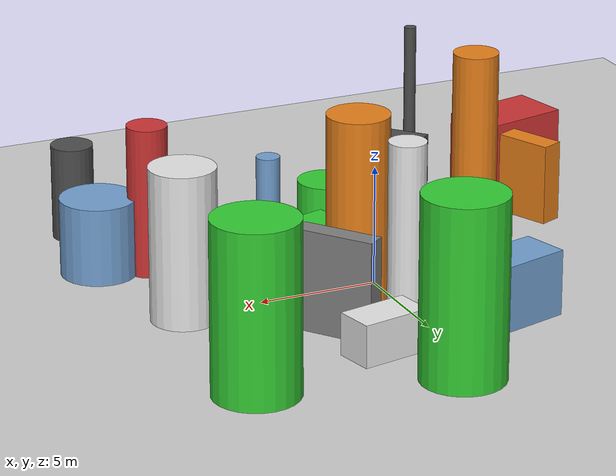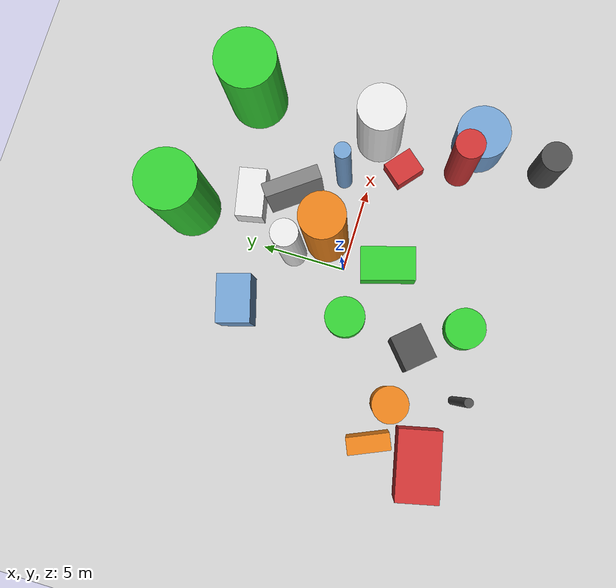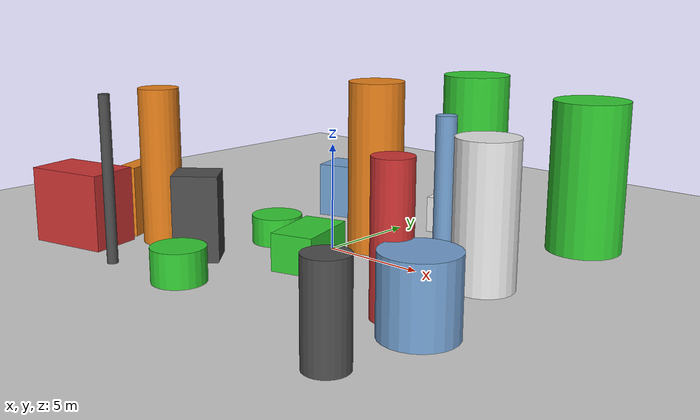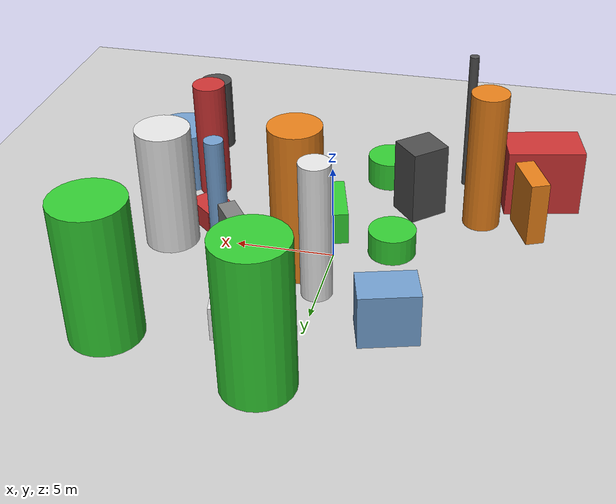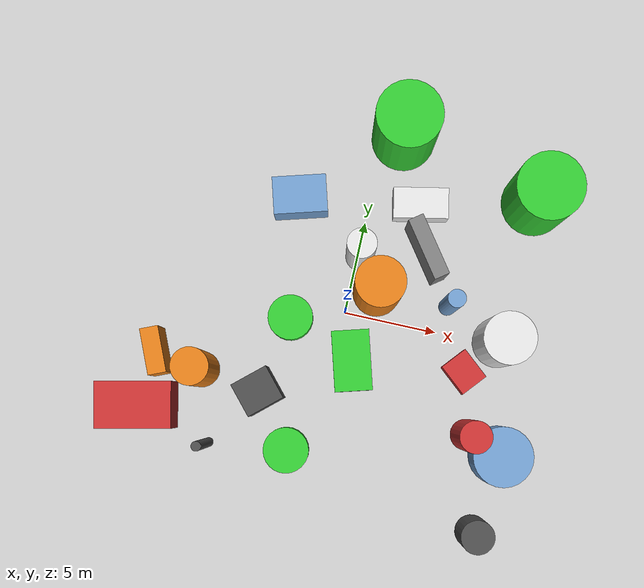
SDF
<?xml version='1.0'?>
<sdf version='1.6'>
  <world name='default'>
    <!-- Sun light -->
    <light name='sun' type='directional'>
      <cast_shadows>1</cast_shadows>
      <pose>0 0 10 0 0 0</pose>
      <diffuse>0.8 0.8 0.8 1</diffuse>
      <specular>0.2 0.2 0.2 1</specular>
      <attenuation>
        <range>1000</range>
        <constant>0.9</constant>
        <linear>0.01</linear>
        <quadratic>0.001</quadratic>
      </attenuation>
      <direction>-0.5 0.1 -0.9</direction>
    </light>

    <!-- Ground plane -->
    <model name='ground_plane'>
      <static>1</static>
      <link name='link'>
        <collision name='collision'>
          <geometry>
            <plane>
              <normal>0 0 1</normal>
              <size>100 100</size>
            </plane>
          </geometry>
          <surface>
            <contact>
              <collide_bitmask>65535</collide_bitmask>
              <ode/>
            </contact>
            <friction>
              <ode>
                <mu>100</mu>
                <mu2>50</mu2>
              </ode>
              <torsional><ode/></torsional>
            </friction>
            <bounce/>
          </surface>
          <max_contacts>10</max_contacts>
        </collision>
        <visual name='visual'>
          <cast_shadows>0</cast_shadows>
          <geometry>
            <plane>
              <normal>0 0 1</normal>
              <size>100 100</size>
            </plane>
          </geometry>
          <material>
            <script>
              <uri>file://media/materials/scripts/gazebo.material</uri>
              <n>Gazebo/Grey</n>
            </script>
          </material>
        </visual>
      </link>
    </model>

    <!-- Environment -->
    <magnetic_field>6e-06 2.3e-05 -4.2e-05</magnetic_field>
    <atmosphere type='adiabatic'/>
    <physics name='default_physics' default='0' type='ode'>
      <gravity>0 0 -9.8</gravity>
      <max_step_size>0.004</max_step_size>
      <real_time_factor>1</real_time_factor>
      <real_time_update_rate>250</real_time_update_rate>
    </physics>
    <scene>
      <ambient>0.4 0.4 0.4 1</ambient>
      <background>0.7 0.7 0.7 1</background>
      <shadows>1</shadows>
    </scene>
    <wind/>
    <spherical_coordinates>
      <surface_model>EARTH_WGS84</surface_model>
      <latitude_deg>0</latitude_deg>
      <longitude_deg>0</longitude_deg>
      <elevation>0</elevation>
      <heading_deg>0</heading_deg>
    </spherical_coordinates>

    <!-- ============ OBSTACLES (21) ============ -->
    <model name='obs_00'>
      <static>1</static>
      <link name='link'>
        <visual name='visual'>
          <geometry>
            <cylinder>
              <radius>0.4699</radius>
              <length>6.7799</length>
            </cylinder>
          </geometry>
          <material>
            <script>
              <n>Gazebo/Blue</n>
              <uri>file://media/materials/scripts/gazebo.material</uri>
            </script>
            <ambient>0.447 0.624 0.812 1</ambient>
          </material>
        </visual>
        <collision name='collision'>
          <geometry>
            <cylinder>
              <radius>0.4699</radius>
              <length>6.7799</length>
            </cylinder>
          </geometry>
          <max_contacts>10</max_contacts>
          <surface>
            <contact><ode/></contact>
            <bounce/>
            <friction>
              <ode><mu>1</mu><mu2>1</mu2></ode>
              <torsional><ode/></torsional>
            </friction>
          </surface>
        </collision>
      </link>
      <pose>5.3257 1.5313 3.3900 0 0 2.4910</pose>
    </model>

    <model name='obs_01'>
      <static>1</static>
      <link name='link'>
        <visual name='visual'>
          <geometry>
            <box>
              <size>3.3683 0.8338 4.2113</size>
            </box>
          </geometry>
          <material>
            <script>
              <n>Gazebo/Grey</n>
              <uri>file://media/materials/scripts/gazebo.material</uri>
            </script>
            <ambient>0.5 0.5 0.5 1</ambient>
          </material>
        </visual>
        <collision name='collision'>
          <geometry>
            <box>
              <size>3.3683 0.8338 4.2113</size>
            </box>
          </geometry>
          <max_contacts>10</max_contacts>
          <surface>
            <contact><ode/></contact>
            <bounce/>
            <friction>
              <ode><mu>1</mu><mu2>1</mu2></ode>
              <torsional><ode/></torsional>
            </friction>
          </surface>
        </collision>
      </link>
      <pose>3.4899 4.0510 2.1056 0 0 2.2081</pose>
    </model>

    <model name='obs_02'>
      <static>1</static>
      <link name='link'>
        <visual name='visual'>
          <geometry>
            <cylinder>
              <radius>1.2161</radius>
              <length>1.5493</length>
            </cylinder>
          </geometry>
          <material>
            <script>
              <n>Gazebo/Green</n>
              <uri>file://media/materials/scripts/gazebo.material</uri>
            </script>
            <ambient>0.2 0.8 0.2 1</ambient>
          </material>
        </visual>
        <collision name='collision'>
          <geometry>
            <cylinder>
              <radius>1.2161</radius>
              <length>1.5493</length>
            </cylinder>
          </geometry>
          <max_contacts>10</max_contacts>
          <surface>
            <contact><ode/></contact>
            <bounce/>
            <friction>
              <ode><mu>1</mu><mu2>1</mu2></ode>
              <torsional><ode/></torsional>
            </friction>
          </surface>
        </collision>
      </link>
      <pose>-1.4585 -7.9180 0.7747 0 0 2.2958</pose>
    </model>

    <model name='obs_03'>
      <static>1</static>
      <link name='link'>
        <visual name='visual'>
          <geometry>
            <cylinder>
              <radius>0.7686</radius>
              <length>7.1585</length>
            </cylinder>
          </geometry>
          <material>
            <script>
              <n>Gazebo/White</n>
              <uri>file://media/materials/scripts/gazebo.material</uri>
            </script>
            <ambient>0.9 0.9 0.9 1</ambient>
          </material>
        </visual>
        <collision name='collision'>
          <geometry>
            <cylinder>
              <radius>0.7686</radius>
              <length>7.1585</length>
            </cylinder>
          </geometry>
          <max_contacts>10</max_contacts>
          <surface>
            <contact><ode/></contact>
            <bounce/>
            <friction>
              <ode><mu>1</mu><mu2>1</mu2></ode>
              <torsional><ode/></torsional>
            </friction>
          </surface>
        </collision>
      </link>
      <pose>0.0939 3.1506 3.5793 0 0 2.8961</pose>
    </model>

    <model name='obs_04'>
      <static>1</static>
      <link name='link'>
        <visual name='visual'>
          <geometry>
            <cylinder>
              <radius>1.7555</radius>
              <length>7.0885</length>
            </cylinder>
          </geometry>
          <material>
            <script>
              <n>Gazebo/Green</n>
              <uri>file://media/materials/scripts/gazebo.material</uri>
            </script>
            <ambient>0.2 0.8 0.2 1</ambient>
          </material>
        </visual>
        <collision name='collision'>
          <geometry>
            <cylinder>
              <radius>1.7555</radius>
              <length>7.0885</length>
            </cylinder>
          </geometry>
          <max_contacts>10</max_contacts>
          <surface>
            <contact><ode/></contact>
            <bounce/>
            <friction>
              <ode><mu>1</mu><mu2>1</mu2></ode>
              <torsional><ode/></torsional>
            </friction>
          </surface>
        </collision>
      </link>
      <pose>8.6704 8.0497 3.5443 0 0 1.3085</pose>
    </model>

    <model name='obs_05'>
      <static>1</static>
      <link name='link'>
        <visual name='visual'>
          <geometry>
            <cylinder>
              <radius>1.7215</radius>
              <length>7.5006</length>
            </cylinder>
          </geometry>
          <material>
            <script>
              <n>Gazebo/Green</n>
              <uri>file://media/materials/scripts/gazebo.material</uri>
            </script>
            <ambient>0.2 0.8 0.2 1</ambient>
          </material>
        </visual>
        <collision name='collision'>
          <geometry>
            <cylinder>
              <radius>1.7215</radius>
              <length>7.5006</length>
            </cylinder>
          </geometry>
          <max_contacts>10</max_contacts>
          <surface>
            <contact><ode/></contact>
            <bounce/>
            <friction>
              <ode><mu>1</mu><mu2>1</mu2></ode>
              <torsional><ode/></torsional>
            </friction>
          </surface>
        </collision>
      </link>
      <pose>1.0016 9.9370 3.7503 0 0 2.3489</pose>
    </model>

    <model name='obs_06'>
      <static>1</static>
      <link name='link'>
        <visual name='visual'>
          <geometry>
            <box>
              <size>1.8387 1.5667 1.2059</size>
            </box>
          </geometry>
          <material>
            <script>
              <n>Gazebo/Red</n>
              <uri>file://media/materials/scripts/gazebo.material</uri>
            </script>
            <ambient>0.8 0.2 0.2 1</ambient>
          </material>
        </visual>
        <collision name='collision'>
          <geometry>
            <box>
              <size>1.8387 1.5667 1.2059</size>
            </box>
          </geometry>
          <max_contacts>10</max_contacts>
          <surface>
            <contact><ode/></contact>
            <bounce/>
            <friction>
              <ode><mu>1</mu><mu2>1</mu2></ode>
              <torsional><ode/></torsional>
            </friction>
          </surface>
        </collision>
      </link>
      <pose>6.8971 -1.7531 0.6030 0 0 2.4423</pose>
    </model>

    <model name='obs_07'>
      <static>1</static>
      <link name='link'>
        <visual name='visual'>
          <geometry>
            <box>
              <size>1.6439 2.9422 1.7660</size>
            </box>
          </geometry>
          <material>
            <script>
              <n>Gazebo/White</n>
              <uri>file://media/materials/scripts/gazebo.material</uri>
            </script>
            <ambient>0.9 0.9 0.9 1</ambient>
          </material>
        </visual>
        <collision name='collision'>
          <geometry>
            <box>
              <size>1.6439 2.9422 1.7660</size>
            </box>
          </geometry>
          <max_contacts>10</max_contacts>
          <surface>
            <contact><ode/></contact>
            <bounce/>
            <friction>
              <ode><mu>1</mu><mu2>1</mu2></ode>
              <torsional><ode/></torsional>
            </friction>
          </surface>
        </collision>
      </link>
      <pose>2.6648 6.5231 0.8830 0 0 1.7747</pose>
    </model>

    <model name='obs_08'>
      <static>1</static>
      <link name='link'>
        <visual name='visual'>
          <geometry>
            <box>
              <size>1.8751 2.0597 3.9757</size>
            </box>
          </geometry>
          <material>
            <script>
              <n>Gazebo/DarkGrey</n>
              <uri>file://media/materials/scripts/gazebo.material</uri>
            </script>
            <ambient>0.3 0.3 0.3 1</ambient>
          </material>
        </visual>
        <collision name='collision'>
          <geometry>
            <box>
              <size>1.8751 2.0597 3.9757</size>
            </box>
          </geometry>
          <max_contacts>10</max_contacts>
          <surface>
            <contact><ode/></contact>
            <bounce/>
            <friction>
              <ode><mu>1</mu><mu2>1</mu2></ode>
              <torsional><ode/></torsional>
            </friction>
          </surface>
        </collision>
      </link>
      <pose>-3.5310 -5.1855 1.9878 0 0 2.2983</pose>
    </model>

    <model name='obs_09'>
      <static>1</static>
      <link name='link'>
        <visual name='visual'>
          <geometry>
            <box>
              <size>2.0118 3.2523 1.7401</size>
            </box>
          </geometry>
          <material>
            <script>
              <n>Gazebo/Green</n>
              <uri>file://media/materials/scripts/gazebo.material</uri>
            </script>
            <ambient>0.2 0.8 0.2 1</ambient>
          </material>
        </visual>
        <collision name='collision'>
          <geometry>
            <box>
              <size>2.0118 3.2523 1.7401</size>
            </box>
          </geometry>
          <max_contacts>10</max_contacts>
          <surface>
            <contact><ode/></contact>
            <bounce/>
            <friction>
              <ode><mu>1</mu><mu2>1</mu2></ode>
              <torsional><ode/></torsional>
            </friction>
          </surface>
        </collision>
      </link>
      <pose>0.9125 -2.4987 0.8700 0 0 0.2830</pose>
    </model>

    <model name='obs_10'>
      <static>1</static>
      <link name='link'>
        <visual name='visual'>
          <geometry>
            <cylinder>
              <radius>1.2072</radius>
              <length>1.3452</length>
            </cylinder>
          </geometry>
          <material>
            <script>
              <n>Gazebo/Green</n>
              <uri>file://media/materials/scripts/gazebo.material</uri>
            </script>
            <ambient>0.2 0.8 0.2 1</ambient>
          </material>
        </visual>
        <collision name='collision'>
          <geometry>
            <cylinder>
              <radius>1.2072</radius>
              <length>1.3452</length>
            </cylinder>
          </geometry>
          <max_contacts>10</max_contacts>
          <surface>
            <contact><ode/></contact>
            <bounce/>
            <friction>
              <ode><mu>1</mu><mu2>1</mu2></ode>
              <torsional><ode/></torsional>
            </friction>
          </surface>
        </collision>
      </link>
      <pose>-2.7998 -0.9519 0.6726 0 0 0.2593</pose>
    </model>

    <model name='obs_11'>
      <static>1</static>
      <link name='link'>
        <visual name='visual'>
          <geometry>
            <cylinder>
              <radius>0.8873</radius>
              <length>4.0414</length>
            </cylinder>
          </geometry>
          <material>
            <script>
              <n>Gazebo/DarkGrey</n>
              <uri>file://media/materials/scripts/gazebo.material</uri>
            </script>
            <ambient>0.3 0.3 0.3 1</ambient>
          </material>
        </visual>
        <collision name='collision'>
          <geometry>
            <cylinder>
              <radius>0.8873</radius>
              <length>4.0414</length>
            </cylinder>
          </geometry>
          <max_contacts>10</max_contacts>
          <surface>
            <contact><ode/></contact>
            <bounce/>
            <friction>
              <ode><mu>1</mu><mu2>1</mu2></ode>
              <torsional><ode/></torsional>
            </friction>
          </surface>
        </collision>
      </link>
      <pose>9.1965 -9.9961 2.0207 0 0 0.8249</pose>
    </model>

    <model name='obs_12'>
      <static>1</static>
      <link name='link'>
        <visual name='visual'>
          <geometry>
            <box>
              <size>0.9720 2.4575 3.4393</size>
            </box>
          </geometry>
          <material>
            <script>
              <n>Gazebo/Orange</n>
              <uri>file://media/materials/scripts/gazebo.material</uri>
            </script>
            <ambient>0.9 0.5 0.1 1</ambient>
          </material>
        </visual>
        <collision name='collision'>
          <geometry>
            <box>
              <size>0.9720 2.4575 3.4393</size>
            </box>
          </geometry>
          <max_contacts>10</max_contacts>
          <surface>
            <contact><ode/></contact>
            <bounce/>
            <friction>
              <ode><mu>1</mu><mu2>1</mu2></ode>
              <torsional><ode/></torsional>
            </friction>
          </surface>
        </collision>
      </link>
      <pose>-9.3067 -4.3104 1.7197 0 0 0.4096</pose>
    </model>

    <model name='obs_13'>
      <static>1</static>
      <link name='link'>
        <visual name='visual'>
          <geometry>
            <box>
              <size>2.4641 3.9898 3.6212</size>
            </box>
          </geometry>
          <material>
            <script>
              <n>Gazebo/Red</n>
              <uri>file://media/materials/scripts/gazebo.material</uri>
            </script>
            <ambient>0.8 0.2 0.2 1</ambient>
          </material>
        </visual>
        <collision name='collision'>
          <geometry>
            <box>
              <size>2.4641 3.9898 3.6212</size>
            </box>
          </geometry>
          <max_contacts>10</max_contacts>
          <surface>
            <contact><ode/></contact>
            <bounce/>
            <friction>
              <ode><mu>1</mu><mu2>1</mu2></ode>
              <torsional><ode/></torsional>
            </friction>
          </surface>
        </collision>
      </link>
      <pose>-9.6740 -7.2983 1.8106 0 0 1.7949</pose>
    </model>

    <model name='obs_14'>
      <static>1</static>
      <link name='link'>
        <visual name='visual'>
          <geometry>
            <cylinder>
              <radius>1.5870</radius>
              <length>3.2639</length>
            </cylinder>
          </geometry>
          <material>
            <script>
              <n>Gazebo/Blue</n>
              <uri>file://media/materials/scripts/gazebo.material</uri>
            </script>
            <ambient>0.447 0.624 0.812 1</ambient>
          </material>
        </visual>
        <collision name='collision'>
          <geometry>
            <cylinder>
              <radius>1.5870</radius>
              <length>3.2639</length>
            </cylinder>
          </geometry>
          <max_contacts>10</max_contacts>
          <surface>
            <contact><ode/></contact>
            <bounce/>
            <friction>
              <ode><mu>1</mu><mu2>1</mu2></ode>
              <torsional><ode/></torsional>
            </friction>
          </surface>
        </collision>
      </link>
      <pose>9.6879 -5.7035 1.6319 0 0 0.2251</pose>
    </model>

    <model name='obs_15'>
      <static>1</static>
      <link name='link'>
        <visual name='visual'>
          <geometry>
            <box>
              <size>2.8511 1.9824 2.7415</size>
            </box>
          </geometry>
          <material>
            <script>
              <n>Gazebo/Blue</n>
              <uri>file://media/materials/scripts/gazebo.material</uri>
            </script>
            <ambient>0.447 0.624 0.812 1</ambient>
          </material>
        </visual>
        <collision name='collision'>
          <geometry>
            <box>
              <size>2.8511 1.9824 2.7415</size>
            </box>
          </geometry>
          <max_contacts>10</max_contacts>
          <surface>
            <contact><ode/></contact>
            <bounce/>
            <friction>
              <ode><mu>1</mu><mu2>1</mu2></ode>
              <torsional><ode/></torsional>
            </friction>
          </surface>
        </collision>
      </link>
      <pose>-3.7019 5.4305 1.3708 0 0 0.2815</pose>
    </model>

    <model name='obs_16'>
      <static>1</static>
      <link name='link'>
        <visual name='visual'>
          <geometry>
            <cylinder>
              <radius>1.3625</radius>
              <length>6.3878</length>
            </cylinder>
          </geometry>
          <material>
            <script>
              <n>Gazebo/White</n>
              <uri>file://media/materials/scripts/gazebo.material</uri>
            </script>
            <ambient>0.9 0.9 0.9 1</ambient>
          </material>
        </visual>
        <collision name='collision'>
          <geometry>
            <cylinder>
              <radius>1.3625</radius>
              <length>6.3878</length>
            </cylinder>
          </geometry>
          <max_contacts>10</max_contacts>
          <surface>
            <contact><ode/></contact>
            <bounce/>
            <friction>
              <ode><mu>1</mu><mu2>1</mu2></ode>
              <torsional><ode/></torsional>
            </friction>
          </surface>
        </collision>
      </link>
      <pose>8.3822 0.2254 3.1939 0 0 1.0824</pose>
    </model>

    <model name='obs_17'>
      <static>1</static>
      <link name='link'>
        <visual name='visual'>
          <geometry>
            <cylinder>
              <radius>1.2900</radius>
              <length>7.9311</length>
            </cylinder>
          </geometry>
          <material>
            <script>
              <n>Gazebo/Orange</n>
              <uri>file://media/materials/scripts/gazebo.material</uri>
            </script>
            <ambient>0.9 0.5 0.1 1</ambient>
          </material>
        </visual>
        <collision name='collision'>
          <geometry>
            <cylinder>
              <radius>1.2900</radius>
              <length>7.9311</length>
            </cylinder>
          </geometry>
          <max_contacts>10</max_contacts>
          <surface>
            <contact><ode/></contact>
            <bounce/>
            <friction>
              <ode><mu>1</mu><mu2>1</mu2></ode>
              <torsional><ode/></torsional>
            </friction>
          </surface>
        </collision>
      </link>
      <pose>1.4134 1.4322 3.9656 0 0 3.1028</pose>
    </model>

    <model name='obs_18'>
      <static>1</static>
      <link name='link'>
        <visual name='visual'>
          <geometry>
            <cylinder>
              <radius>0.9649</radius>
              <length>7.4695</length>
            </cylinder>
          </geometry>
          <material>
            <script>
              <n>Gazebo/Orange</n>
              <uri>file://media/materials/scripts/gazebo.material</uri>
            </script>
            <ambient>0.9 0.5 0.1 1</ambient>
          </material>
        </visual>
        <collision name='collision'>
          <geometry>
            <cylinder>
              <radius>0.9649</radius>
              <length>7.4695</length>
            </cylinder>
          </geometry>
          <max_contacts>10</max_contacts>
          <surface>
            <contact><ode/></contact>
            <bounce/>
            <friction>
              <ode><mu>1</mu><mu2>1</mu2></ode>
              <torsional><ode/></torsional>
            </friction>
          </surface>
        </collision>
      </link>
      <pose>-6.8779 -4.7002 3.7347 0 0 1.9578</pose>
    </model>

    <model name='obs_19'>
      <static>1</static>
      <link name='link'>
        <visual name='visual'>
          <geometry>
            <cylinder>
              <radius>0.8416</radius>
              <length>6.3041</length>
            </cylinder>
          </geometry>
          <material>
            <script>
              <n>Gazebo/Red</n>
              <uri>file://media/materials/scripts/gazebo.material</uri>
            </script>
            <ambient>0.8 0.2 0.2 1</ambient>
          </material>
        </visual>
        <collision name='collision'>
          <geometry>
            <cylinder>
              <radius>0.8416</radius>
              <length>6.3041</length>
            </cylinder>
          </geometry>
          <max_contacts>10</max_contacts>
          <surface>
            <contact><ode/></contact>
            <bounce/>
            <friction>
              <ode><mu>1</mu><mu2>1</mu2></ode>
              <torsional><ode/></torsional>
            </friction>
          </surface>
        </collision>
      </link>
      <pose>7.7925 -5.0029 3.1521 0 0 0.6273</pose>
    </model>

    <model name='obs_20'>
      <static>1</static>
      <link name='link'>
        <visual name='visual'>
          <geometry>
            <cylinder>
              <radius>0.2509</radius>
              <length>7.6426</length>
            </cylinder>
          </geometry>
          <material>
            <script>
              <n>Gazebo/DarkGrey</n>
              <uri>file://media/materials/scripts/gazebo.material</uri>
            </script>
            <ambient>0.3 0.3 0.3 1</ambient>
          </material>
        </visual>
        <collision name='collision'>
          <geometry>
            <cylinder>
              <radius>0.2509</radius>
              <length>7.6426</length>
            </cylinder>
          </geometry>
          <max_contacts>10</max_contacts>
          <surface>
            <contact><ode/></contact>
            <bounce/>
            <friction>
              <ode><mu>1</mu><mu2>1</mu2></ode>
              <torsional><ode/></torsional>
            </friction>
          </surface>
        </collision>
      </link>
      <pose>-5.6513 -8.4560 3.8213 0 0 0.3530</pose>
    </model>

    <!-- GUI camera -->
    <gui fullscreen='0'>
      <camera name='user_camera'>
        <pose>-15 0 18 0 0.85 0.15</pose>
        <view_controller>orbit</view_controller>
        <projection_type>perspective</projection_type>
      </camera>
    </gui>
  </world>
</sdf>
